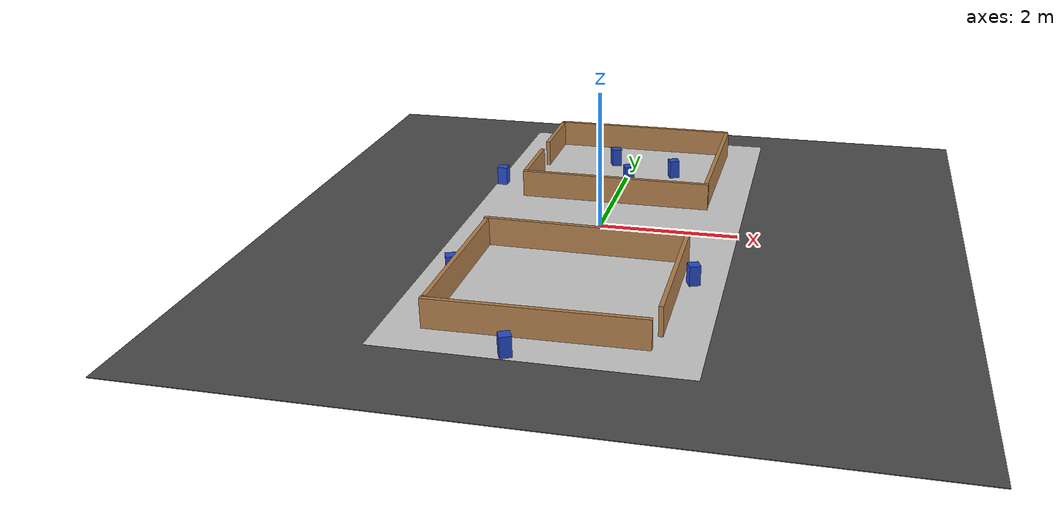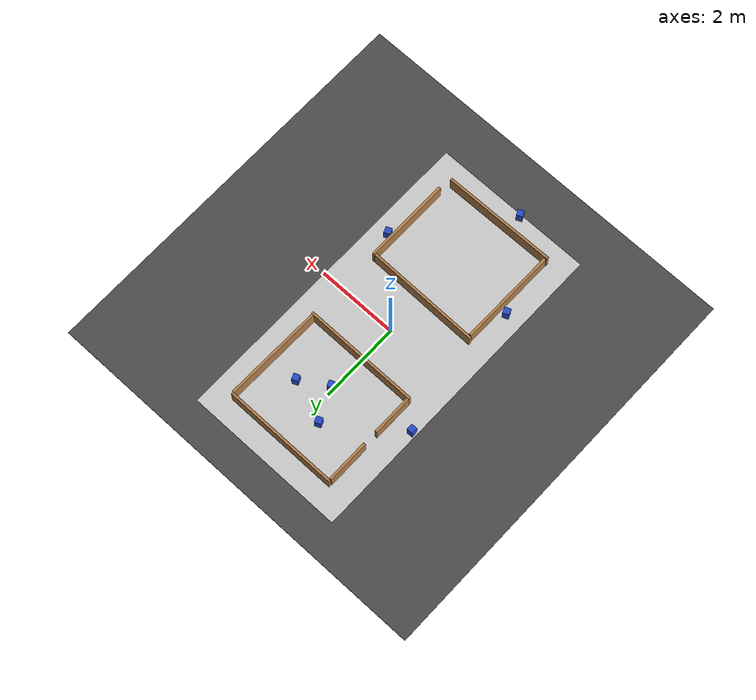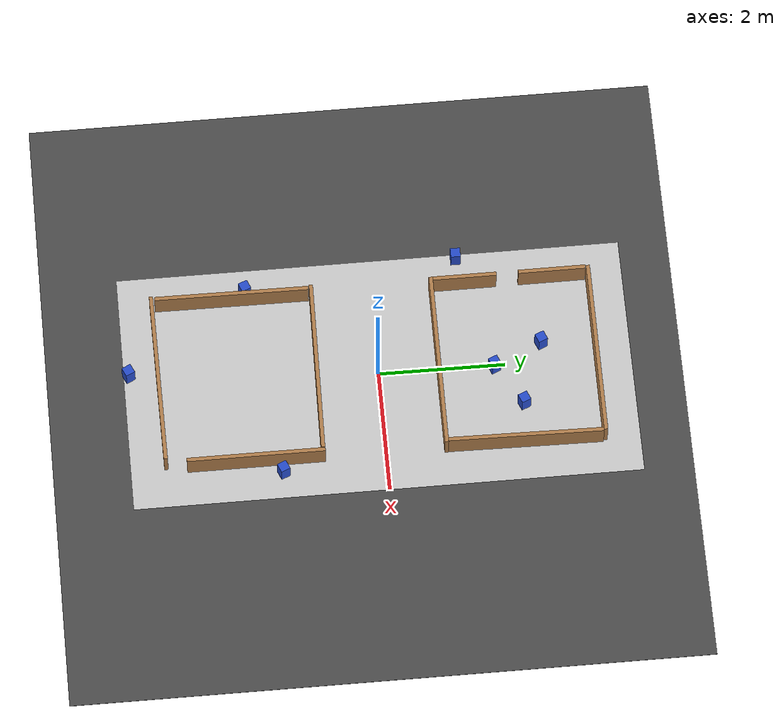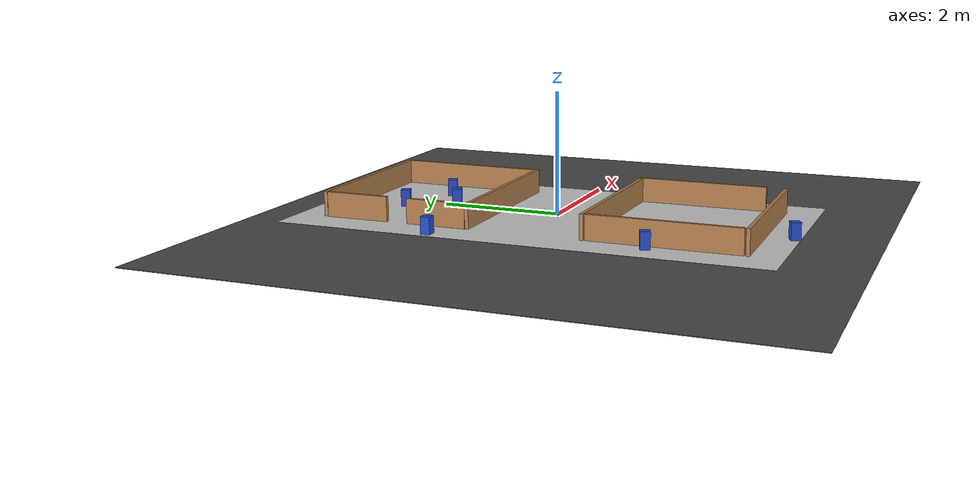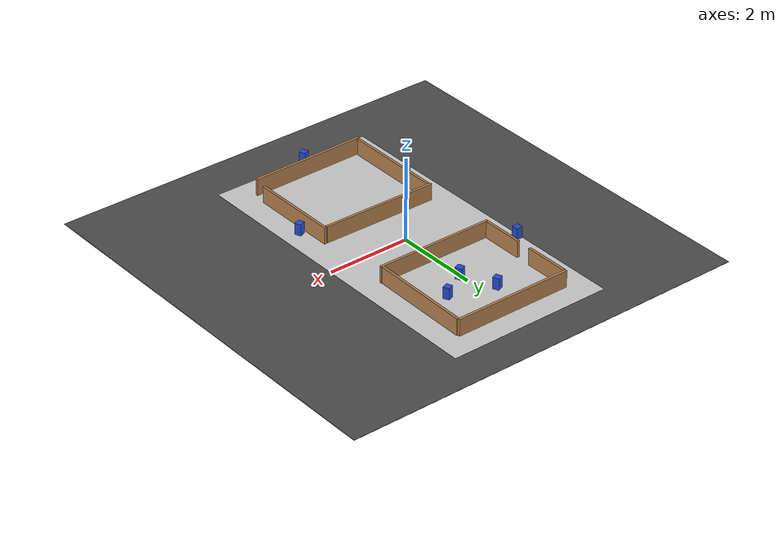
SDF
<sdf version="1.6">
 <world name="default">
  <scene>
   <ambient>0 0 0 1</ambient>
   <shadows>0</shadows>
   <grid>0</grid>
   <background>0.7 0.7 0.7 1</background>
  </scene>
  <model name="course">
   <static>1</static>
   <link name="course_link">
    <collision name="course_collision">
     <geometry><plane><normal>0 0 1</normal><size>8 4</size></plane></geometry>
     <surface><friction><ode><mu>100</mu><mu2>50</mu2></ode></friction></surface>
    </collision>
    <visual name="course_visual">
     <cast_shadows>0</cast_shadows>
     <geometry><plane><normal>0 0 1</normal><size>8 4</size></plane></geometry>
     <material>
      <script>
       <uri>model://parc_field/course/materials/scripts</uri>
       <uri>model://parc_field/course/materials/textures</uri>
       <name>course</name>
      </script>
     </material>
    </visual>
   </link>
   <pose>0 0 0 0 0 -1.571</pose>
  </model>
  <light name="sun" type="directional">
   <pose>0 0 10 0 -0 0</pose>
   <diffuse>0.8 0.8 0.8 1</diffuse>
   <specular>0.1 0.1 0.1 1</specular>
   <attenuation>
    <range>1000</range>
    <constant>0.9</constant>
    <linear>0.01</linear>
    <quadratic>0.001</quadratic>
   </attenuation>
   <direction>-0.5 0.5 -1</direction>
  </light>
  <model name="ground2">
   <pose>0.181387 -0.213464 -0.1 0 -0 0</pose>
   <static>1</static>
   <link name="ground">
    <collision name="ground_coll"><geometry><box><size>8 8 0.01</size></box></geometry></collision>
    <visual name="ground_vis">
     <geometry><box><size>10 10 0.01</size></box></geometry>
     <material>
      <script><uri>file://media/materials/scripts/gazebo.material</uri><name>Gazebo/DarkGrey</name></script>
     </material>
    </visual>
   </link>
  </model>
  <gravity>0 0 -9.8</gravity>
  <magnetic_field>6e-06 2.3e-05 -4.2e-05</magnetic_field>
  <atmosphere type="adiabatic"/>
  <physics name="default_physics" default="0" type="ode">
   <max_step_size>0.001</max_step_size>
   <real_time_factor>1</real_time_factor>
   <real_time_update_rate>1000</real_time_update_rate>
  </physics>
  <spherical_coordinates>
   <surface_model>EARTH_WGS84</surface_model>
   <latitude_deg>0</latitude_deg>
   <longitude_deg>0</longitude_deg>
   <elevation>0</elevation>
   <heading_deg>0</heading_deg>
  </spherical_coordinates>
  <light name="user_point_light_1" type="point">
   <pose>-1.8 1.5 1 0 -0 0</pose>
   <diffuse>0.5 0.5 0.5 1</diffuse>
   <specular>0.1 0.1 0.1 1</specular>
   <attenuation>
    <range>20</range>
    <constant>0.5</constant>
    <linear>0.01</linear>
    <quadratic>0.001</quadratic>
   </attenuation>
   <cast_shadows>0</cast_shadows>
   <direction>0 0 -1</direction>
  </light>
  <light name="user_point_light_2" type="point">
   <pose>-0.576385 -1.96951 2.04969 0 -0 0</pose>
   <diffuse>0.5 0.5 0.5 1</diffuse>
   <specular>0.1 0.1 0.1 1</specular>
   <direction>0 0 -1</direction>
   <attenuation>
    <range>20</range>
    <constant>0.5</constant>
    <linear>0.01</linear>
    <quadratic>0.001</quadratic>
   </attenuation>
   <cast_shadows>0</cast_shadows>
  </light>
  <light name="user_point_light_3" type="point">
   <pose>-1.40308 -1.69544 2.04969 0 -0 0</pose>
   <diffuse>0.5 0.5 0.5 1</diffuse>
   <specular>0.1 0.1 0.1 1</specular>
   <direction>0 0 -1</direction>
   <attenuation>
    <range>20</range>
    <constant>0.5</constant>
    <linear>0.01</linear>
    <quadratic>0.001</quadratic>
   </attenuation>
   <cast_shadows>0</cast_shadows>
  </light>
  <model name="wa11-1">
   <pose>-0.049266 -3.45715 0.202513 -3e-06 -0.000164 0.010612</pose>
   <link name="link">
    <inertial>
     <mass>1</mass>
     <inertia>
      <ixx>0.166667</ixx>
      <ixy>0</ixy>
      <ixz>0</ixz>
      <iyy>0.166667</iyy>
      <iyz>0</iyz>
      <izz>0.166667</izz>
     </inertia>
    </inertial>
    <collision name="collision"><geometry><box><size>2.82919 0.060755 0.405491</size></box></geometry></collision>
    <visual name="visual">
     <geometry><box><size>2.82919 0.060755 0.405491</size></box></geometry>
     <material>
      <script><name>Gazebo/Wood</name><uri>file://media/materials/scripts/gazebo.material</uri></script>
     </material>
    </visual>
   </link>
  </model>
  <model name="wa11-2">
   <pose>-1.41728 -2.20404 0.202631 -2e-06 9.4e-05 -1.57652</pose>
   <link name="link">
    <inertial>
     <mass>1</mass>
     <inertia>
      <ixx>0.166667</ixx>
      <ixy>0</ixy>
      <ixz>0</ixz>
      <iyy>0.166667</iyy>
      <iyz>0</iyz>
      <izz>0.166667</izz>
     </inertia>
    </inertial>
    <collision name="collision"><geometry><box><size>2.43146 0.060755 0.405491</size></box></geometry></collision>
    <visual name="visual">
     <geometry><box><size>2.43146 0.060755 0.405491</size></box></geometry>
     <material>
      <script><name>Gazebo/Wood</name><uri>file://media/materials/scripts/gazebo.material</uri></script>
     </material>
    </visual>
   </link>
  </model>
  <model name="wa11-3">
   <pose>-0.044158 -0.963722 0.202512 -3e-06 0.000165 -0.014409</pose>
   <link name="link">
    <inertial>
     <mass>1</mass>
     <inertia>
      <ixx>0.166667</ixx>
      <ixy>0</ixy>
      <ixz>0</ixz>
      <iyy>0.166667</iyy>
      <iyz>0</iyz>
      <izz>0.166667</izz>
     </inertia>
    </inertial>
    <collision name="collision"><geometry><box><size>2.83214 0.060755 0.405491</size></box></geometry></collision>
    <visual name="visual">
     <geometry><box><size>2.83214 0.060755 0.405491</size></box></geometry>
     <material>
      <script><name>Gazebo/Wood</name><uri>file://media/materials/scripts/gazebo.material</uri></script>
     </material>
    </visual>
   </link>
  </model>
  <model name="wa11-4">
   <pose>0.008213 0.950008 0.202579 8.5e-05 -0.000117 -0.003325</pose>
   <link name="link">
    <inertial>
     <mass>1</mass>
     <inertia>
      <ixx>0.166667</ixx>
      <ixy>0</ixy>
      <ixz>0</ixz>
      <iyy>0.166667</iyy>
      <iyz>0</iyz>
      <izz>0.166667</izz>
     </inertia>
    </inertial>
    <collision name="collision"><geometry><box><size>2.87872 0.060755 0.405491</size></box></geometry></collision>
    <visual name="visual">
     <geometry><box><size>2.87872 0.060755 0.405491</size></box></geometry>
     <material>
      <script><name>Gazebo/Wood</name><uri>file://media/materials/scripts/gazebo.material</uri></script>
     </material>
    </visual>
   </link>
  </model>
  <model name="wa11-5">
   <pose>0.010093 3.44353 0.202551 -7e-06 0.000136 -0.002771</pose>
   <link name="link">
    <inertial>
     <mass>1</mass>
     <inertia>
      <ixx>0.166667</ixx>
      <ixy>0</ixy>
      <ixz>0</ixz>
      <iyy>0.166667</iyy>
      <iyz>0</iyz>
      <izz>0.166667</izz>
     </inertia>
    </inertial>
    <collision name="collision"><geometry><box><size>2.87227 0.060755 0.405491</size></box></geometry></collision>
    <visual name="visual">
     <geometry><box><size>2.87227 0.060755 0.405491</size></box></geometry>
     <material>
      <script><name>Gazebo/Wood</name><uri>file://media/materials/scripts/gazebo.material</uri></script>
     </material>
    </visual>
   </link>
  </model>
  <model name="wa11-6">
   <pose>1.4107 -2.03384 0.20268 -1e-06 6e-05 -1.57079</pose>
   <link name="link">
    <inertial>
     <mass>1</mass>
     <inertia>
      <ixx>0.166667</ixx>
      <ixy>0</ixy>
      <ixz>0</ixz>
      <iyy>0.166667</iyy>
      <iyz>0</iyz>
      <izz>0.166667</izz>
     </inertia>
    </inertial>
    <collision name="collision"><geometry><box><size>2.16461 0.060755 0.405491</size></box></geometry></collision>
    <visual name="visual">
     <geometry><box><size>2.16461 0.060755 0.405491</size></box></geometry>
     <material>
      <script><name>Gazebo/Wood</name><uri>file://media/materials/scripts/gazebo.material</uri></script>
     </material>
    </visual>
   </link>
  </model>
  <model name="wa11-7">
   <pose>1.42642 2.19266 0.202631 2e-06 -9.4e-05 -1.58479</pose>
   <link name="link">
    <inertial>
     <mass>1</mass>
     <inertia>
      <ixx>0.166667</ixx>
      <ixy>0</ixy>
      <ixz>0</ixz>
      <iyy>0.166667</iyy>
      <iyz>0</iyz>
      <izz>0.166667</izz>
     </inertia>
    </inertial>
    <collision name="collision"><geometry><box><size>2.43192 0.060755 0.405491</size></box></geometry></collision>
    <visual name="visual">
     <geometry><box><size>2.43192 0.060755 0.405491</size></box></geometry>
     <material>
      <script><name>Gazebo/Wood</name><uri>file://media/materials/scripts/gazebo.material</uri></script>
     </material>
    </visual>
   </link>
  </model>
  <model name="wa11-8">
   <pose>-1.40317 1.49014 0.202741 0 -9e-06 -1.5709</pose>
   <link name="link">
    <inertial>
     <mass>1</mass>
     <inertia>
      <ixx>0.166667</ixx>
      <ixy>0</ixy>
      <ixz>0</ixz>
      <iyy>0.166667</iyy>
      <iyz>0</iyz>
      <izz>0.166667</izz>
     </inertia>
    </inertial>
    <collision name="collision"><geometry><box><size>1.00393 0.060755 0.405491</size></box></geometry></collision>
    <visual name="visual">
     <geometry><box><size>1.00393 0.060755 0.405491</size></box></geometry>
     <material>
      <script><name>Gazebo/Wood</name><uri>file://media/materials/scripts/gazebo.material</uri></script>
     </material>
    </visual>
   </link>
  </model>
  <model name="wa11-9">
   <pose>-1.40607 2.87392 0.202742 0 -6e-06 -1.56827</pose>
   <link name="link">
    <inertial>
     <mass>1</mass>
     <inertia>
      <ixx>0.166667</ixx>
      <ixy>0</ixy>
      <ixz>0</ixz>
      <iyy>0.166667</iyy>
      <iyz>0</iyz>
      <izz>0.166667</izz>
     </inertia>
    </inertial>
    <collision name="collision"><geometry><box><size>1.06563 0.060755 0.405491</size></box></geometry></collision>
    <visual name="visual">
     <geometry><box><size>1.06563 0.060755 0.405491</size></box></geometry>
     <material>
      <script><name>Gazebo/Wood</name><uri>file://media/materials/scripts/gazebo.material</uri></script>
     </material>
    </visual>
   </link>
  </model>
  <model name="box-1">
   <pose>-0.276467 -3.91681 0.139765 -2e-06 2e-06 0.435204</pose>
   <link name="link">
    <inertial>
     <mass>1</mass>
     <inertia>
      <ixx>0.166667</ixx>
      <ixy>0</ixy>
      <ixz>0</ixz>
      <iyy>0.166667</iyy>
      <iyz>0</iyz>
      <izz>0.166667</izz>
     </inertia>
    </inertial>
    <collision name="collision">
     <geometry><box><size>0.152109 0.153487 0.279529</size></box></geometry>
    </collision>
    <visual name="visual">
     <geometry><box><size>0.152109 0.153487 0.279529</size></box></geometry>
     <material>
      <script><name>Gazebo/Blue</name><uri>file://media/materials/scripts/gazebo.material</uri></script>
     </material>
    </visual>
   </link>
  </model>
  <model name="box-2">
   <pose>-1.59512 -1.98367 0.139765 -0 1e-06 0.387859</pose>
   <link name="link">
    <inertial>
     <mass>1</mass>
     <inertia>
      <ixx>0.166667</ixx>
      <ixy>0</ixy>
      <ixz>0</ixz>
      <iyy>0.166667</iyy>
      <iyz>0</iyz>
      <izz>0.166667</izz>
     </inertia>
    </inertial>
    <collision name="collision">
     <geometry><box><size>0.152109 0.153487 0.279529</size></box></geometry>
    </collision>
    <visual name="visual">
     <geometry><box><size>0.152109 0.153487 0.279529</size></box></geometry>
     <material>
      <script><name>Gazebo/Blue</name><uri>file://media/materials/scripts/gazebo.material</uri></script>
     </material>
    </visual>
   </link>
  </model>
  <model name="box-3">
   <pose>-1.89418 1.39132 0.139764 1e-06 4e-06 4.9e-05</pose>
   <link name="link">
    <inertial>
     <mass>1</mass>
     <inertia>
      <ixx>0.166667</ixx>
      <ixy>0</ixy>
      <ixz>0</ixz>
      <iyy>0.166667</iyy>
      <iyz>0</iyz>
      <izz>0.166667</izz>
     </inertia>
    </inertial>
    <collision name="collision">
     <geometry><box><size>0.152109 0.153487 0.279529</size></box></geometry>
    </collision>
    <visual name="visual">
     <geometry><box><size>0.152109 0.153487 0.279529</size></box></geometry>
     <material>
      <script><name>Gazebo/Blue</name><uri>file://media/materials/scripts/gazebo.material</uri></script>
     </material>
    </visual>
   </link>
  </model>
  <model name="box-4">
   <pose>1.59195 -1.6199 0.139765 -2e-06 0 0.387873</pose>
   <link name="link">
    <inertial>
     <mass>1</mass>
     <inertia>
      <ixx>0.166667</ixx>
      <ixy>0</ixy>
      <ixz>0</ixz>
      <iyy>0.166667</iyy>
      <iyz>0</iyz>
      <izz>0.166667</izz>
     </inertia>
    </inertial>
    <collision name="collision">
     <geometry><box><size>0.152109 0.153487 0.279529</size></box></geometry>
    </collision>
    <visual name="visual">
     <geometry><box><size>0.152109 0.153487 0.279529</size></box></geometry>
     <material>
      <script><name>Gazebo/Blue</name><uri>file://media/materials/scripts/gazebo.material</uri></script>
     </material>
    </visual>
   </link>
  </model>
  <model name="box-5">
   <pose>-0.299561 2.59993 0.139765 -3e-06 1e-06 0.387839</pose>
   <link name="link">
    <inertial>
     <mass>1</mass>
     <inertia>
      <ixx>0.166667</ixx>
      <ixy>0</ixy>
      <ixz>0</ixz>
      <iyy>0.166667</iyy>
      <iyz>0</iyz>
      <izz>0.166667</izz>
     </inertia>
    </inertial>
    <collision name="collision">
     <geometry><box><size>0.152109 0.153487 0.279529</size></box></geometry>
    </collision>
    <visual name="visual">
     <geometry><box><size>0.152109 0.153487 0.279529</size></box></geometry>
     <material>
      <script><name>Gazebo/Blue</name><uri>file://media/materials/scripts/gazebo.material</uri></script>
     </material>
    </visual>
   </link>
  </model>
  <model name="box-6">
   <pose>0.058842 1.82873 0.139765 -3e-06 -2e-06 0.387871</pose>
   <link name="link">
    <inertial>
     <mass>1</mass>
     <inertia>
      <ixx>0.166667</ixx>
      <ixy>0</ixy>
      <ixz>0</ixz>
      <iyy>0.166667</iyy>
      <iyz>0</iyz>
      <izz>0.166667</izz>
     </inertia>
    </inertial>
    <collision name="collision">
     <geometry><box><size>0.152109 0.153487 0.279529</size></box></geometry>
    </collision>
    <visual name="visual">
     <geometry><box><size>0.152109 0.153487 0.279529</size></box></geometry>
     <material>
      <script><name>Gazebo/Blue</name><uri>file://media/materials/scripts/gazebo.material</uri></script>
     </material>
    </visual>
   </link>
  </model>
  <model name="box-7">
   <pose>0.723633 2.23438 0.139765 1e-06 3e-06 0.387881</pose>
   <link name="link">
    <inertial>
     <mass>1</mass>
     <inertia>
      <ixx>0.166667</ixx>
      <ixy>0</ixy>
      <ixz>0</ixz>
      <iyy>0.166667</iyy>
      <iyz>0</iyz>
      <izz>0.166667</izz>
     </inertia>
    </inertial>
    <collision name="collision">
     <geometry><box><size>0.152109 0.153487 0.279529</size></box></geometry>
    </collision>
    <visual name="visual">
     <geometry><box><size>0.152109 0.153487 0.279529</size></box></geometry>
     <material>
      <script><name>Gazebo/Blue</name><uri>file://media/materials/scripts/gazebo.material</uri></script>
     </material>
    </visual>
   </link>
  </model>
 </world>
</sdf>
